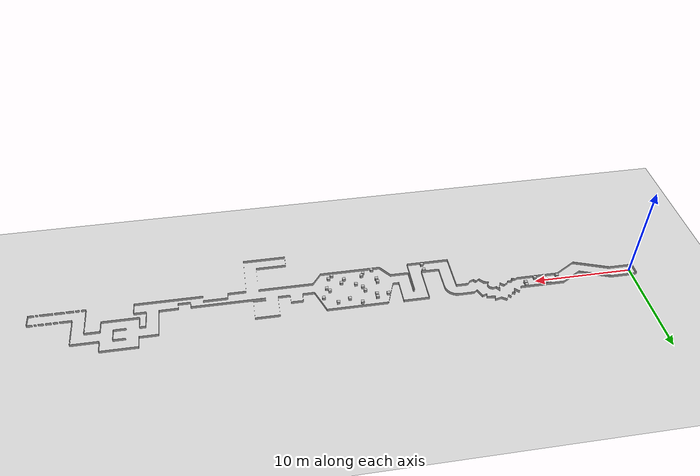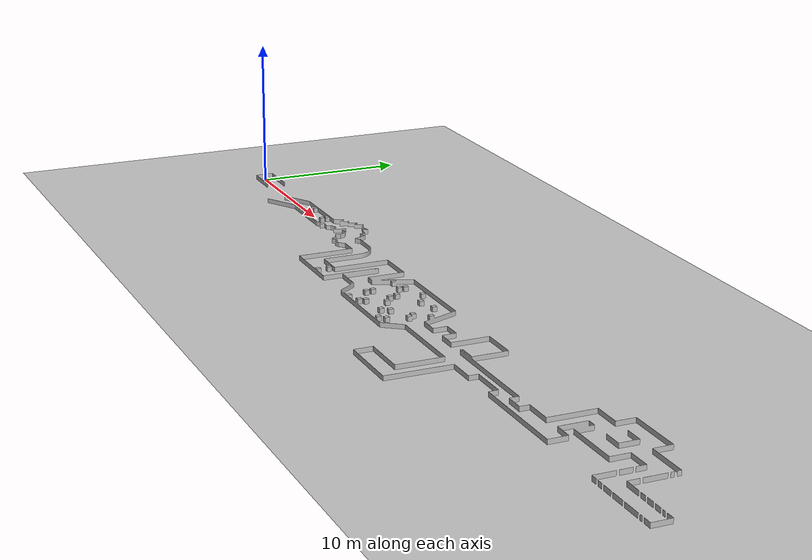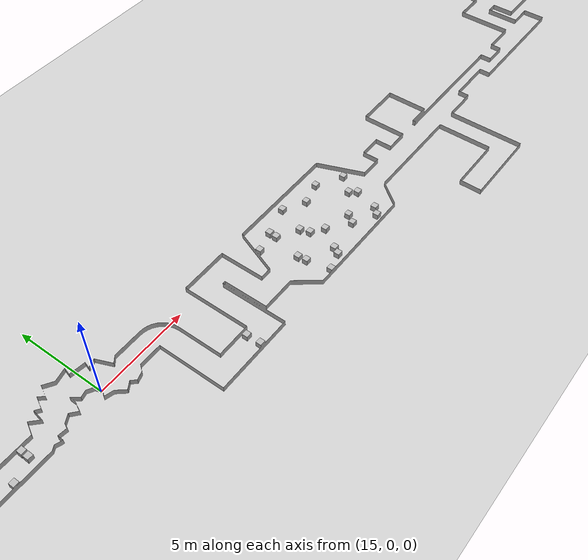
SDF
<?xml version="1.0"?>
<sdf version="1.4">
<world name="gauntlet">

  <scene>
    <ambient>0.5 0.5 0.5 1.0</ambient>
    <shadows>0</shadows>
  </scene>

  <include>
    <uri>model://sun</uri>
  </include>

  <model name="ground_plane">
    <static>true</static>
    <link name="link">
      <pose>25 0 0 0 -0 0</pose>
      <collision name="collision">
        <geometry>
          <plane>
            <normal>0 0 1</normal>
            <size>100 25</size>
          </plane>
        </geometry>
        <surface>
          <friction>
            <ode>
              <mu>100</mu>
              <mu2>50</mu2>
            </ode>
          </friction>
        </surface>
      </collision>
      <visual name="visual">
        <cast_shadows>false</cast_shadows>
        <geometry>
          <plane>
            <normal>0 0 1</normal>
            <size>100 25</size>
          </plane>
        </geometry>
        <material>
          <script>
            <uri>file://media/materials/scripts/gazebo.material</uri>
            <name>Gazebo/Grey</name>
          </script>
        </material>
      </visual>
    </link>
  </model>

  <include>
    <uri>model://racecar_description/models/gauntlet</uri>
    <name>gauntlet</name>
  </include>

</world>
</sdf>

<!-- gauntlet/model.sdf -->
<sdf version='1.4'>
  <model name="gauntlet">
    <link name="link">
      <pose>-0.5 -7.25 0 0 -0 0</pose>
      <collision name="collision">
        <geometry>
          <mesh>
            <uri>model://racecar_description/meshes/gauntlet.dae</uri>
          </mesh>
        </geometry>
      </collision>
      <visual name="visual">
        <geometry>
          <mesh>
            <uri>model://racecar_description/meshes/gauntlet.dae</uri>
          </mesh>
        </geometry>
      </visual>
    </link>
    <static>1</static>
  </model>
</sdf>
